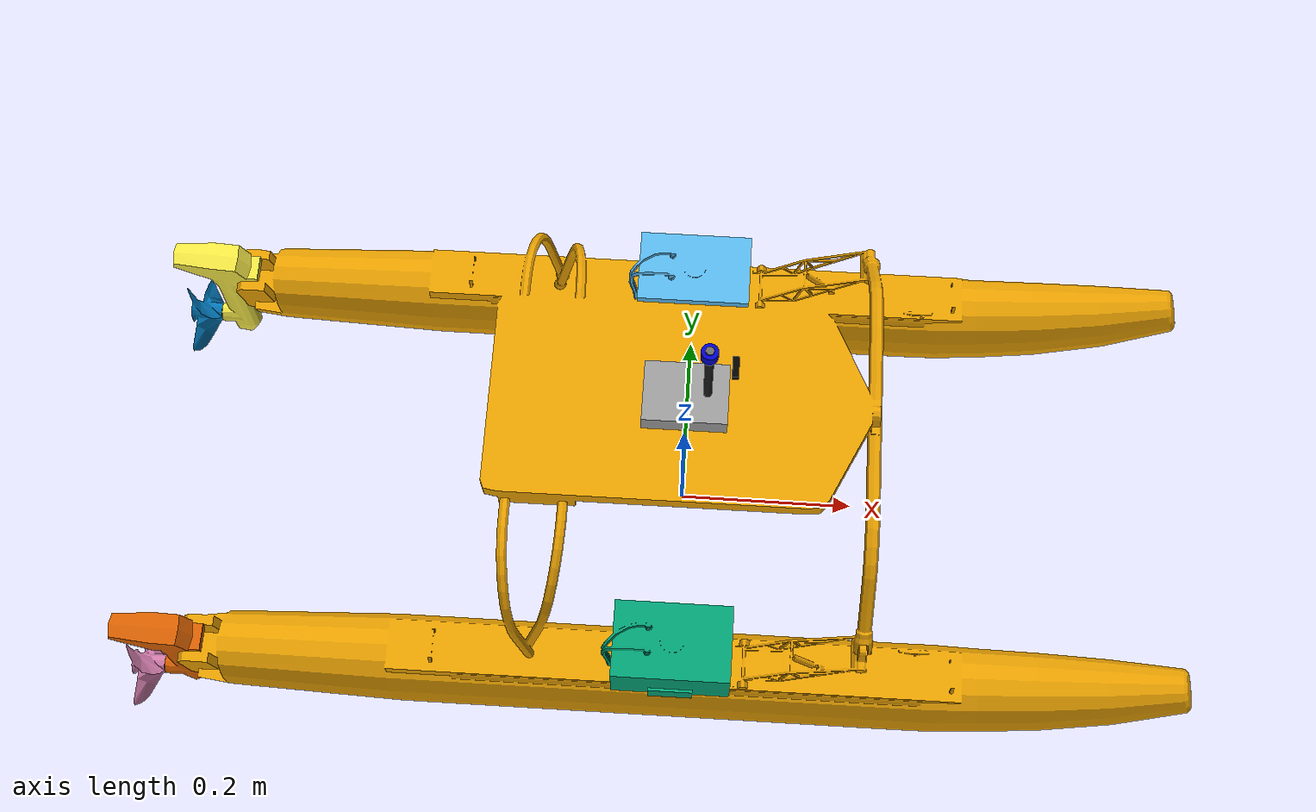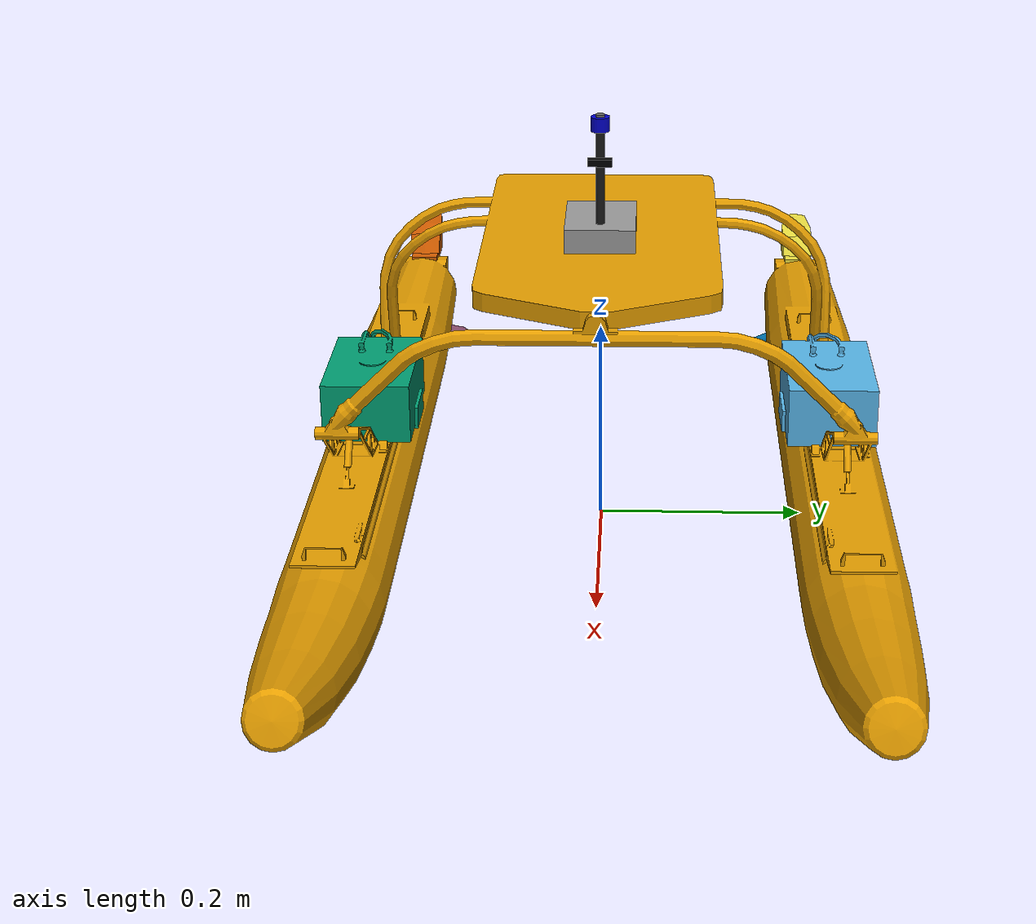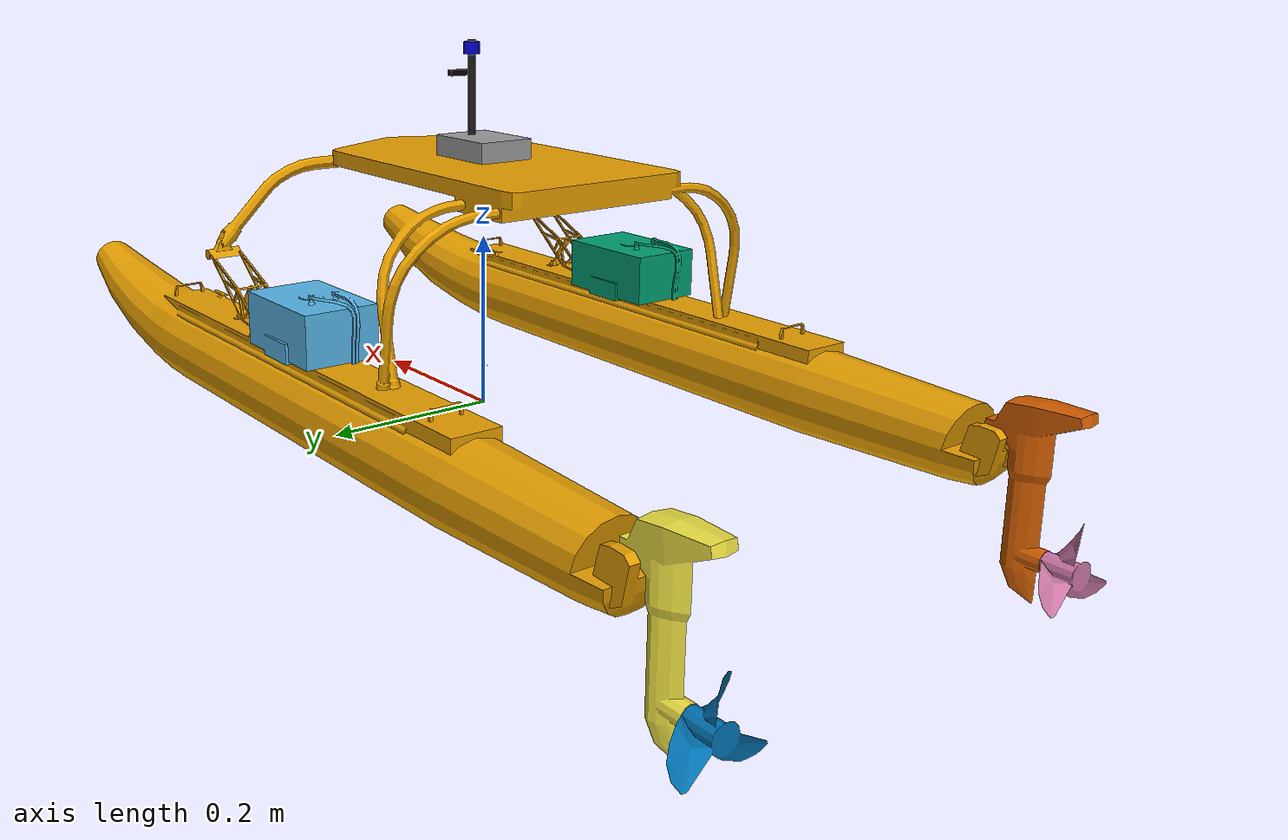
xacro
<?xml version="1.0"?>
<robot xmlns:xacro="http://ros.org/wiki/xacro" name="wamv_kaboat">
  <xacro:arg name="sim_camera_enabled" default="true"/>

  <!-- 크기 조정 가능한 선체 (base_link, 엔진, 배터리, 부력/유체동역학, 추력,
       상태 퍼블리셔 + 스케일 파라미터 s 를 여기서 정의한다).
       배 크기는 kaboat_hull.xacro 의 target_length 하나로 조정. -->
  <xacro:include filename="$(find kaboat_sim)/urdf/kaboat_hull.xacro" />

  <!-- 위 include 에서 정의된 s(= target_length/base_length)를 그대로 사용해
       센서 장착부(높이·크기)도 동일 비율로 축소한다. 센서 성능값(라이다 사거리,
       카메라 FOV/해상도 등)은 물리 치수가 아니므로 스케일하지 않는다. -->

  <link name="cpu_box_link">
    <visual>
      <geometry><box size="${0.4*s} ${0.3*s} ${0.2*s}"/></geometry>
      <material name="cpu_grey"><color rgba="0.6 0.6 0.6 1.0"/></material>
    </visual>
    <collision>
      <geometry><box size="${0.4*s} ${0.3*s} ${0.2*s}"/></geometry>
    </collision>
  </link>
  <joint name="cpu_box_joint" type="fixed">
    <parent link="wamv/base_link"/>
    <child link="cpu_box_link"/>
    <origin xyz="0.0 0.0 ${1.3*s}" rpy="0 0 0"/>
  </joint>

  <link name="sensor_pole_link">
    <visual>
      <geometry><cylinder radius="${0.02*s}" length="${0.4*s}"/></geometry>
      <material name="pole_black"><color rgba="0.1 0.1 0.1 1.0"/></material>
    </visual>
  </link>
  <joint name="sensor_pole_joint" type="fixed">
    <parent link="cpu_box_link"/>
    <child link="sensor_pole_link"/>
    <origin xyz="${0.1*s} 0.0 ${0.3*s}" rpy="0 0 0"/>
  </joint>

  <link name="lidar_link">
    <visual>
      <geometry><cylinder radius="${0.04*s}" length="${0.06*s}"/></geometry>
      <material name="lidar_blue"><color rgba="0.0 0.0 0.8 1.0"/></material>
    </visual>
  </link>
  <joint name="lidar_joint" type="fixed">
    <parent link="sensor_pole_link"/>
    <child link="lidar_link"/>
    <origin xyz="0.0 0.0 ${0.23*s}" rpy="0 0 0"/>
  </joint>

  <gazebo reference="lidar_link">
    <sensor name="lidar_2d" type="gpu_lidar">
      <always_on>true</always_on>
      <update_rate>5</update_rate>
      <topic>/lidar/scan</topic>
      <gz_frame_id>lidar_link</gz_frame_id>
      <!-- 실물 TG-50: 최대 50m, 스캔 10Hz, 샘플 20kHz → 10Hz 에서 2000점/회전
           (각해상도 0.18°), 최소거리 0.05m, 거리정확도 ±2cm 수준 -->
      <lidar>
        <scan>
          <horizontal>
            <samples>720</samples>
            <resolution>1</resolution>
            <min_angle>-3.14159</min_angle>
            <max_angle>3.14159</max_angle>
          </horizontal>
        </scan>
        <range><min>0.05</min><max>50.0</max><resolution>0.01</resolution></range>
        <!-- 라이다 noise 는 type 을 자식 요소로 쓴다 (camera/imu 의 속성 형식과 다름) -->
        <noise>
          <type>gaussian</type>
          <mean>0.0</mean>
          <stddev>0.02</stddev>
        </noise>
      </lidar>
    </sensor>
  </gazebo>

  <link name="camera_link">
    <visual>
      <geometry><box size="${0.03*s} ${0.1*s} ${0.03*s}"/></geometry>
      <material name="cam_black"><color rgba="0.0 0.0 0.0 1.0"/></material>
    </visual>
  </link>
  <joint name="camera_joint" type="fixed">
    <parent link="sensor_pole_link"/>
    <child link="camera_link"/>
    <origin xyz="${0.12*s} 0.0 ${0.1*s}" rpy="0 0 0"/>
  </joint>

  <!-- ROS optical convention: +Z forward, +X right, +Y down. -->
  <link name="camera_optical_frame"/>
  <joint name="camera_optical_joint" type="fixed">
    <parent link="camera_link"/>
    <child link="camera_optical_frame"/>
    <origin xyz="0 0 0" rpy="-1.57079632679 0 -1.57079632679"/>
  </joint>

  <xacro:if value="$(arg sim_camera_enabled)">
  <gazebo reference="camera_link">
    <sensor name="depth_camera" type="rgbd_camera">
      <always_on>true</always_on>
      <update_rate>10</update_rate>
      <topic>/camera/depth</topic>
      <gz_frame_id>camera_optical_frame</gz_frame_id>
      <camera>
        <horizontal_fov>1.5184</horizontal_fov>
        <image>
          <width>640</width>
          <height>360</height>
        </image>
        <lens>
          <intrinsics>
            <fx>337.22</fx><fy>337.22</fy>
            <cx>320.0</cx><cy>180.0</cy><s>0.0</s>
          </intrinsics>
        </lens>
        <clip>
          <near>0.1</near>
          <far>100</far>
        </clip>
      </camera>
    </sensor>
  </gazebo>
  </xacro:if>

  <!-- IMU — 실물 EBIMU-9DOFv5-R3 (UART). sim 에서는 Gazebo imu 센서가
       sensor_msgs/Imu 로 바로 발행하므로 UART 파싱 불필요. 실물 전환 시
       이 노드만 UART 드라이버로 교체하고 토픽 인터페이스(/imu/data)는 유지. -->
  <link name="imu_link">
    <visual>
      <geometry><box size="${0.02*s} ${0.02*s} ${0.01*s}"/></geometry>
      <material name="imu_green"><color rgba="0.0 0.6 0.2 1.0"/></material>
    </visual>
  </link>
  <joint name="imu_joint" type="fixed">
    <parent link="wamv/base_link"/>
    <child link="imu_link"/>
    <origin xyz="0.0 0.0 ${0.2*s}" rpy="0 0 0"/>
  </joint>

  <gazebo reference="imu_link">
    <sensor name="imu_sensor" type="imu">
      <always_on>true</always_on>
      <update_rate>100</update_rate>
      <topic>/imu/data</topic>
      <gz_frame_id>imu_link</gz_frame_id>
      <imu>
        <angular_velocity>
          <x><noise type="gaussian"><mean>0.0</mean><stddev>0.0002</stddev><bias_mean>7.5e-06</bias_mean><bias_stddev>8.0e-07</bias_stddev></noise></x>
          <y><noise type="gaussian"><mean>0.0</mean><stddev>0.0002</stddev><bias_mean>7.5e-06</bias_mean><bias_stddev>8.0e-07</bias_stddev></noise></y>
          <z><noise type="gaussian"><mean>0.0</mean><stddev>0.0002</stddev><bias_mean>7.5e-06</bias_mean><bias_stddev>8.0e-07</bias_stddev></noise></z>
        </angular_velocity>
        <linear_acceleration>
          <x><noise type="gaussian"><mean>0.0</mean><stddev>0.017</stddev><bias_mean>0.1</bias_mean><bias_stddev>0.001</bias_stddev></noise></x>
          <y><noise type="gaussian"><mean>0.0</mean><stddev>0.017</stddev><bias_mean>0.1</bias_mean><bias_stddev>0.001</bias_stddev></noise></y>
          <z><noise type="gaussian"><mean>0.0</mean><stddev>0.017</stddev><bias_mean>0.1</bias_mean><bias_stddev>0.001</bias_stddev></noise></z>
        </linear_acceleration>
      </imu>
    </sensor>
  </gazebo>

  <!-- GPS — 실물 기종 미정 (NMEA/serial 예상). sim 에서는 Gazebo navsat 센서가
       sensor_msgs/NavSatFix 로 발행. world 의 spherical_coordinates 원점 기준. -->
  <link name="gps_link">
    <visual>
      <geometry><cylinder radius="${0.02*s}" length="${0.02*s}"/></geometry>
      <material name="gps_grey"><color rgba="0.4 0.4 0.4 1.0"/></material>
    </visual>
  </link>
  <joint name="gps_joint" type="fixed">
    <parent link="sensor_pole_link"/>
    <child link="gps_link"/>
    <origin xyz="0.0 0.0 ${0.26*s}" rpy="0 0 0"/>
  </joint>

  <gazebo reference="gps_link">
    <sensor name="navsat_sensor" type="navsat">
      <always_on>true</always_on>
      <update_rate>10</update_rate>
      <topic>/navsat</topic>
      <gz_frame_id>gps_link</gz_frame_id>
      <navsat>
        <position_sensing>
          <horizontal><noise type="gaussian"><mean>0.0</mean><stddev>9e-7</stddev></noise></horizontal>
          <vertical><noise type="gaussian"><mean>0.0</mean><stddev>3.0</stddev></noise></vertical>
        </position_sensing>
      </navsat>
    </sensor>
  </gazebo>

  <gazebo>
    <plugin filename="gz-sim-odometry-publisher-system"
            name="gz::sim::systems::OdometryPublisher">
      <odom_frame>odom</odom_frame>
      <robot_base_frame>wamv/base_link</robot_base_frame>
      <odom_topic>/model/wamv_kaboat/odometry</odom_topic>
      <tf_topic>/model/wamv_kaboat/tf</tf_topic>
      <odom_publish_frequency>50</odom_publish_frequency>
    </plugin>
  </gazebo>

</robot>

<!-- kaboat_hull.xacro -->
<robot xmlns:xacro="http://ros.org/wiki/xacro" name="kaboat_hull">

  <!-- ===== 크기 파라미터 ===== -->
  <xacro:property name="target_length" value="1.1"/>   <!-- 원하는 세로 길이 [m] -->
  <xacro:property name="base_length"   value="4.9"/>   <!-- VRX WAM-V 원본 길이 [m] (고정) -->
  <xacro:property name="s"             value="${target_length / base_length}"/>

  <xacro:property name="mass_factor" value="1.0"/>

  <xacro:property name="namespace" value="wamv" scope="global"/>

  <!-- ===================================================================
       선체 base_link (충돌형상은 원본을 s 배로 축소)
  ==================================================================== -->
  <xacro:macro name="main_collisions" params="prefix reflect:=1">
    <!-- Main float -->
    <collision name="${prefix}_float">
      <origin xyz="${-0.4*s} ${1.03*reflect*s} ${0.2*s}" rpy="${0*reflect} 1.57 0" />
      <geometry><cylinder length="${4*s}" radius="${0.2*s}" /></geometry>
    </collision>
    <collision name="${prefix}_mid_float">
      <origin xyz="${1.85*s} ${1.03*reflect*s} ${0.3*s}" rpy="${0*reflect} 1.38 0" />
      <geometry><cylinder length="${0.5*s}" radius="${0.17*s}" /></geometry>
    </collision>
    <collision name="${prefix}_front_float">
      <origin xyz="${2.3*s} ${1.03*reflect*s} ${0.4*s}" rpy="${0*reflect} 1.3 0" />
      <geometry><cylinder length="${0.45*s}" radius="${0.12*s}" /></geometry>
    </collision>
    <!-- Front beam -->
    <collision name="front_${prefix}_beam_lower">
      <origin xyz="${0.9*s} ${0.85*reflect*s} ${1*s}" rpy="${0.78*reflect} 0 0" />
      <geometry><cylinder length="${0.5*s}" radius="${0.04*s}" /></geometry>
    </collision>
    <collision name="front_${prefix}_beam_upper">
      <origin xyz="${0.9*s} ${0.6*reflect*s} ${1.18*s}" rpy="${1.35*reflect} 0 0" />
      <geometry><cylinder length="${0.2*s}" radius="${0.04*s}" /></geometry>
    </collision>
    <!-- Mid beam -->
    <collision name="mid_${prefix}_beam_lower">
      <origin xyz="${-0.65*s} ${0.99*reflect*s} ${0.7*s}" rpy="${0.1*reflect} 0.25 0" />
      <geometry><cylinder length="${0.45*s}" radius="${0.03*s}" /></geometry>
    </collision>
    <collision name="mid_${prefix}_beam_medium">
      <origin xyz="${-0.57*s} ${0.87*reflect*s} ${1.05*s}" rpy="${0.75*reflect} 0.25 0" />
      <geometry><cylinder length="${0.32*s}" radius="${0.03*s}" /></geometry>
    </collision>
    <collision name="mid_${prefix}_beam_upper">
      <origin xyz="${-0.55*s} ${0.65*reflect*s} ${1.17*s}" rpy="${1.35*reflect} 0.25 0" />
      <geometry><cylinder length="${0.3*s}" radius="${0.03*s}" /></geometry>
    </collision>
    <!-- Rear beam -->
    <collision name="rear_${prefix}_beam_lower">
      <origin xyz="${-0.74*s} ${1.03*reflect*s} ${0.7*s}" rpy="${0*reflect} -0.15 0" />
      <geometry><cylinder length="${0.45*s}" radius="${0.03*s}" /></geometry>
    </collision>
    <collision name="rear_${prefix}_beam_medium">
      <origin xyz="${-0.79*s} ${0.91*reflect*s} ${1.05*s}" rpy="${0.75*reflect} -0.15 0" />
      <geometry><cylinder length="${0.32*s}" radius="${0.03*s}" /></geometry>
    </collision>
    <collision name="rear_${prefix}_beam_upper">
      <origin xyz="${-0.81*s} ${0.67*reflect*s} ${1.18*s}" rpy="${1.45*reflect} -0.15 0" />
      <geometry><cylinder length="${0.3*s}" radius="${0.03*s}" /></geometry>
    </collision>
    <!-- Joint -->
    <collision name="${prefix}_joint">
      <origin xyz="${0.58*s} ${1.03*reflect*s} ${0.6*s}" rpy="${0*reflect} -0.6 0" />
      <geometry><box size="${0.65*s} ${0.2*s} ${0.1*s}" /></geometry>
    </collision>
  </xacro:macro>

  <link name="${namespace}/base_link">
    <visual>
      <geometry>
        <mesh filename="package://wamv_description/models/WAM-V-Base/mesh/WAM-V-Base.dae"
              scale="${s} ${s} ${s}"/>
      </geometry>
    </visual>

    <xacro:main_collisions prefix="left"  reflect="1" />
    <xacro:main_collisions prefix="right" reflect="-1" />

    <!-- Top base -->
    <collision name="top_base">
      <origin xyz="0 0 ${1.25*s}" rpy="0 0 0" />
      <geometry><box size="${1.85*s} ${1*s} ${0.1*s}" /></geometry>
    </collision>

    <inertial>
      <mass value="${180.0 * s**3 * mass_factor}"/>
      <inertia ixx="${120.0 * s**5}" ixy="0.0" ixz="0.0"
               iyy="${393.0 * s**5}" iyz="0.0" izz="${446.0 * s**5}"/>
    </inertial>
  </link>

  <gazebo>
    <enable_wind>true</enable_wind>
  </gazebo>

  <gazebo reference="${namespace}/base_link">
    <visual>
      <material>
        <diffuse>1.0 1.0 1.0</diffuse>
        <specular>1.0 1.0 1.0</specular>
        <pbr>
          <metal>
            <albedo_map>model://wamv_description/models/WAM-V-Base/mesh/WAM-V_Albedo.png</albedo_map>
            <normal_map>model://wamv_description/models/WAM-V-Base/mesh/WAM-V_Normal.png</normal_map>
            <roughness_map>model://wamv_description/models/WAM-V-Base/mesh/WAM-V_Roughness.png</roughness_map>
            <metalness_map>model://wamv_description/models/WAM-V-Base/mesh/WAM-V_Metalness.png</metalness_map>
          </metal>
        </pbr>
      </material>
    </visual>

    <sensor type="contact" name="contact_sensor">
      <contact>
        <collision>${namespace}/base_link_fixed_joint_lump__top_base_collision_24</collision>
        <collision>${namespace}/base_link_fixed_joint_lump__left_float_collision</collision>
        <collision>${namespace}/base_link_fixed_joint_lump__left_mid_float_collision_1</collision>
        <collision>${namespace}/base_link_fixed_joint_lump__left_front_float_collision_2</collision>
        <collision>${namespace}/base_link_fixed_joint_lump__right_float_collision_12</collision>
        <collision>${namespace}/base_link_fixed_joint_lump__right_mid_float_collision_13</collision>
        <collision>${namespace}/base_link_fixed_joint_lump__right_front_float_collision_14</collision>
        <topic>/vrx/contacts</topic>
      </contact>
      <always_on>1</always_on>
      <update_rate>5</update_rate>
    </sensor>
  </gazebo>

  <!-- ===================================================================
       배터리 (질량 ∝ s^3, 위치/치수 ∝ s)
  ==================================================================== -->
  <xacro:macro name="battery" params="prefix position">
    <link name="${namespace}/${prefix}_battery_link">
      <visual>
        <origin xyz="0 ${-1.03*s} ${-0.45*s}" rpy="0 0 0"/>
        <geometry>
          <mesh filename="package://vrx_gazebo/models/battery/mesh/battery.dae"
                scale="${s} ${s} ${s}"/>
        </geometry>
      </visual>
      <collision name="${prefix}_battery_collision">
        <origin xyz="0 0 ${0.15*s}" rpy="0 0 0"/>
        <geometry><box size="${0.6*s} ${0.4*s} ${0.31*s}"/></geometry>
      </collision>
      <inertial>
        <origin xyz="0 0 ${0.15*s}" rpy="0 0 0"/>
        <mass value="${23.5 * s**3 * mass_factor}"/>
        <inertia ixx="${0.5015291666666667 * s**5}"
                 iyy="${0.8931958333333333 * s**5}"
                 izz="${1.0183333333333333 * s**5}"
                 ixy="0" ixz="0" iyz="0"/>
      </inertial>
    </link>
    <joint name="${namespace}/${prefix}_chasis_battery_joint" type="fixed">
      <origin xyz="${position}" rpy="0 0 0"/>
      <parent link="${namespace}/base_link"/>
      <child link="${namespace}/${prefix}_battery_link"/>
    </joint>
  </xacro:macro>

  <xacro:battery prefix="left"  position="0 ${1*s} ${0.45*s}"/>
  <xacro:battery prefix="right" position="0 ${-1*s} ${0.45*s}"/>

  <!-- ===================================================================
       엔진 + 프로펠러 (치수/위치 ∝ s, 질량 ∝ s^3, 관성 ∝ s^5)
  ==================================================================== -->
  <xacro:macro name="engine" params="prefix position">
    <link name="${namespace}/${prefix}_engine_link">
      <visual>
        <geometry>
          <mesh filename="package://wamv_description/models/engine/mesh/engine.dae"
                scale="${s} ${s} ${s}"/>
        </geometry>
      </visual>
      <collision name="${prefix}_engine_vertical_axis_collision">
        <origin xyz="${-0.16*s} 0 ${-0.24*s}" rpy="0 0 0" />
        <geometry><box size="${0.2*s} ${0.15*s} ${0.83*s}" /></geometry>
      </collision>
      <collision name="${prefix}_engine_rear_end_collision">
        <origin xyz="${-0.34*s} 0 ${0.12*s}" rpy="0 0 0" />
        <geometry><box size="${0.12*s} ${0.15*s} ${0.12*s}" /></geometry>
      </collision>
      <inertial>
        <mass value="${15 * s**3 * mass_factor}"/>
        <inertia ixx="${0.889245 * s**5}" ixy="0.0" ixz="0.0"
                 iyy="${0.911125 * s**5}" iyz="0.0" izz="${0.078125 * s**5}"/>
      </inertial>
    </link>

    <link name="${namespace}/${prefix}_propeller_link">
      <visual>
        <geometry>
          <mesh filename="package://wamv_description/models/propeller/mesh/propeller.dae"
                scale="${s} ${s} ${s}"/>
        </geometry>
      </visual>
      <collision name="${prefix}_propeller_collision">
        <origin xyz="${-0.08*s} 0 0" rpy="0 1.57 0" />
        <geometry><cylinder length="${0.18*s}" radius="${0.24*s}" /></geometry>
      </collision>
      <inertial>
        <mass value="${0.5 * s**3 * mass_factor}"/>
        <inertia ixx="${0.008545 * s**5}" ixy="0.0" ixz="0.0"
                 iyy="${0.008545 * s**5}" iyz="0.0" izz="${0.0144 * s**5}"/>
      </inertial>
    </link>

    <joint name="${namespace}/${prefix}_chassis_engine_joint" type="revolute">
      <axis xyz="0 0 1"/>
      <limit lower="${-pi}" upper="${pi}" effort="10" velocity="10"/>
      <origin xyz="${position}" rpy="0 0 0"/>
      <parent link="${namespace}/base_link"/>
      <child link="${namespace}/${prefix}_engine_link"/>
    </joint>

    <joint name="${namespace}/${prefix}_engine_propeller_joint" type="continuous">
      <axis rpy="0 0 0" xyz="1 0 0"/>
      <parent link="${namespace}/${prefix}_engine_link"/>
      <child link="${namespace}/${prefix}_propeller_link"/>
      <origin rpy="0 0 0" xyz="${-0.278156*s} 0 ${-0.509371*s}"/>
      <limit effort="100" velocity="100" />
      <dynamics friction="0.05" damping="0.05" />
    </joint>
  </xacro:macro>

  <xacro:engine prefix="left"  position="${-2.373776*s} ${1.027135*s} ${0.318237*s}" />
  <xacro:engine prefix="right" position="${-2.373776*s} ${-1.027135*s} ${0.318237*s}" />

  <!-- ===================================================================
       추력 플러그인 (프로펠러 직경 ∝ s, 최대 추력 ∝ s^2)
  ==================================================================== -->
  <xacro:macro name="thruster_plugin" params="name">
    <gazebo>
      <plugin filename="gz-sim-thruster-system" name="gz::sim::systems::Thruster">
        <joint_name>${namespace}/${name}_engine_propeller_joint</joint_name>
        <thrust_coefficient>0.004422</thrust_coefficient>
        <fluid_density>1000</fluid_density>
        <propeller_diameter>${0.2 * s}</propeller_diameter>
        <velocity_control>true</velocity_control>
        <!-- 원본 max = ((x_u + x_uu*Vmax)*Vmax)/2 = 2353.53; 스케일 × s^2 -->
        <max_thrust_cmd>${(((51.3 + 72.4*7.71667) * 7.71667) / 2) * s**2}</max_thrust_cmd>
        <namespace>${namespace}</namespace>
        <topic>thrusters/${name}/thrust</topic>
        <name>${name}</name>
      </plugin>
      <plugin filename="gz-sim-joint-position-controller-system"
              name="gz::sim::systems::JointPositionController">
        <joint_name>${namespace}/${name}_chassis_engine_joint</joint_name>
        <use_velocity_commands>true</use_velocity_commands>
        <topic>${namespace}/thrusters/${name}/pos</topic>
        <name>${name}</name>
      </plugin>
    </gazebo>
  </xacro:macro>

  <xacro:thruster_plugin name="left" />
  <xacro:thruster_plugin name="right" />

  <!-- ===================================================================
       부력(Surface) + 유체동역학(SimpleHydrodynamics)
  ==================================================================== -->
  <gazebo>
    <!-- Left hull -->
    <plugin filename="libSurface.so" name="vrx::Surface">
      <link_name>${namespace}/base_link</link_name>
      <hull_length>${4.9 * s}</hull_length>
      <hull_radius>${0.213 * s}</hull_radius>
      <fluid_level>0</fluid_level>
      <points>
        <point>${0.6*s} ${1.03*s} 0</point>
        <point>${-1.4*s} ${1.03*s} 0</point>
      </points>
      <wavefield><topic>/vrx/wavefield/parameters</topic></wavefield>
    </plugin>
    <!-- Right hull -->
    <plugin filename="libSurface.so" name="vrx::Surface">
      <link_name>${namespace}/base_link</link_name>
      <hull_length>${4.9 * s}</hull_length>
      <hull_radius>${0.213 * s}</hull_radius>
      <fluid_level>0</fluid_level>
      <points>
        <point>${0.6*s} ${-1.03*s} 0</point>
        <point>${-1.4*s} ${-1.03*s} 0</point>
      </points>
      <wavefield><topic>/vrx/wavefield/parameters</topic></wavefield>
    </plugin>

    <plugin filename="libSimpleHydrodynamics.so" name="vrx::SimpleHydrodynamics">
      <link_name>${namespace}/base_link</link_name>
      <!-- Added mass (원본 0 유지) -->
      <xDotU>0.0</xDotU>
      <yDotV>0.0</yDotV>
      <nDotR>0.0</nDotR>
      <!-- 병진 드래그 ∝ s^2 -->
      <xU>${100.0 * s**2}</xU>
      <xUU>${150.0 * s**2}</xUU>
      <yV>${100.0 * s**2}</yV>
      <yVV>${100.0 * s**2}</yVV>
      <zW>${500.0 * s**2}</zW>
      <!-- 회전 드래그 ∝ s^4 -->
      <kP>${300.0 * s**4}</kP>
      <kPP>${600.0 * s**4}</kPP>
      <mQ>${900.0 * s**4}</mQ>
      <mQQ>${900.0 * s**4}</mQQ>
      <nR>${800.0 * s**4}</nR>
      <nRR>${800.0 * s**4}</nRR>
    </plugin>
  </gazebo>

  <!-- ===================================================================
       TF / 상태 퍼블리셔 (스케일과 무관)
  ==================================================================== -->
  <gazebo>
    <plugin filename="libgz-sim-pose-publisher-system.so"
            name="gz::sim::systems::PosePublisher">
      <publish_link_pose>false</publish_link_pose>
      <publish_sensor_pose>true</publish_sensor_pose>
      <publish_collision_pose>false</publish_collision_pose>
      <publish_visual_pose>false</publish_visual_pose>
      <publish_nested_model_pose>false</publish_nested_model_pose>
      <publish_model_pose>false</publish_model_pose>
      <use_pose_vector_msg>true</use_pose_vector_msg>
      <static_publisher>false</static_publisher>
      <static_update_frequency>1</static_update_frequency>
    </plugin>
    <plugin filename="gz-sim-joint-state-publisher-system"
            name="gz::sim::systems::JointStatePublisher">
    </plugin>
  </gazebo>

</robot>
